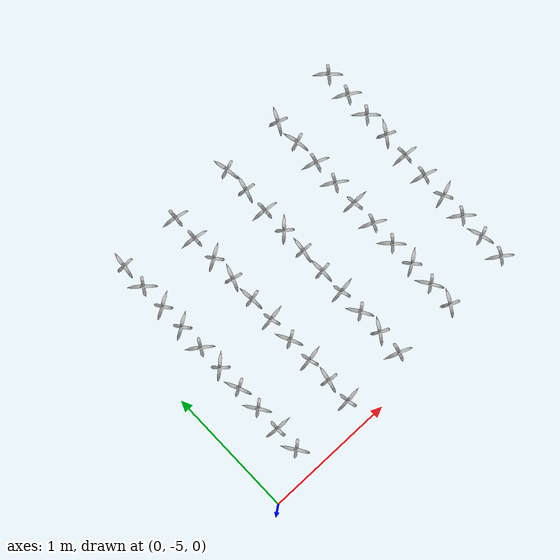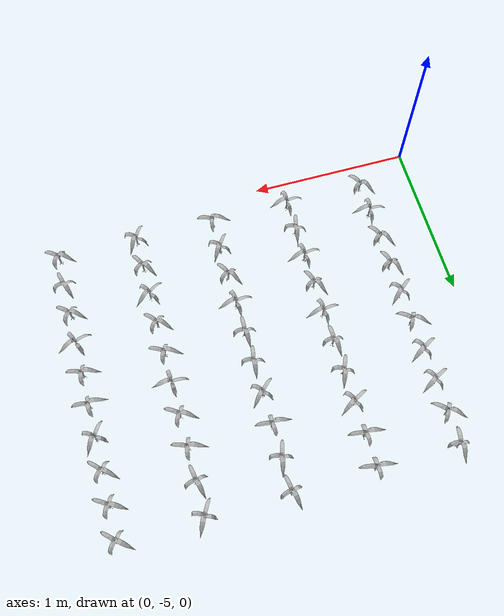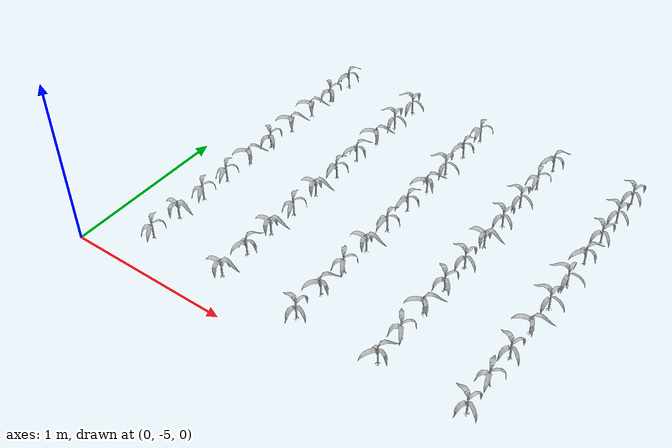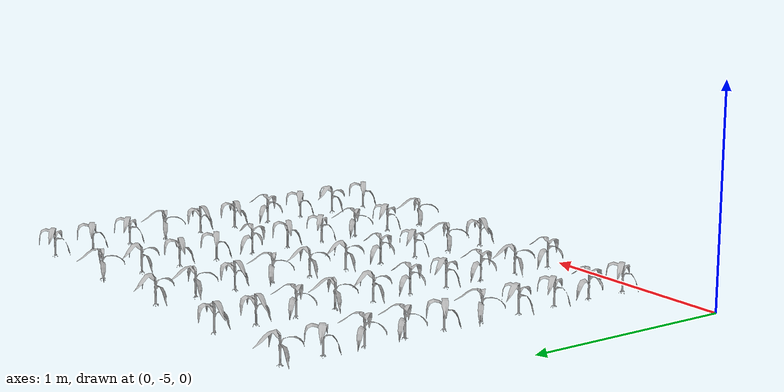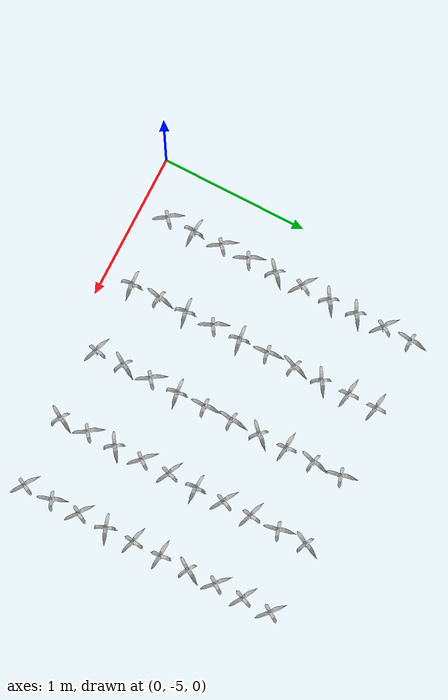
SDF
<sdf version="1.7">
 <world name="default">
  <model name="maize_0.36262630970692733_-4.8">
   <static>1</static>
   <link name="link">
    <inertial>
     <mass>0.2</mass>
     <inertia>
      <ixx>0.166667</ixx>
      <ixy>0</ixy>
      <ixz>0</ixz>
      <iyy>0.166667</iyy>
      <iyz>0</iyz>
      <izz>0.166667</izz>
     </inertia>
    </inertial>
    <collision name="collision">
     <geometry><mesh><uri>model://corn_3/meshes/corn.dae</uri><scale>0.25 0.25 0.25</scale></mesh></geometry>
     <surface>
      <friction><ode><mu>0</mu><mu2>0</mu2></ode></friction>
      <contact><ode><kp>0</kp><kd>0</kd><max_vel>0</max_vel><min_depth>0.002</min_depth></ode></contact>
     </surface>
    </collision>
    <visual name="visual">
     <geometry><mesh><uri>model://corn_3/meshes/corn.dae</uri><scale>0.25 0.25 0.25</scale></mesh></geometry>
    </visual>
    <velocity_decay><linear>0</linear><angular>0</angular></velocity_decay>
   </link>
   <pose>0.362626 -4.8 0.05 0 -0 2.21687</pose>
  </model>
  <model name="maize_0.36262630970692733_-4.6049999999999995">
   <static>1</static>
   <link name="link">
    <inertial>
     <mass>0.2</mass>
     <inertia>
      <ixx>0.166667</ixx>
      <ixy>0</ixy>
      <ixz>0</ixz>
      <iyy>0.166667</iyy>
      <iyz>0</iyz>
      <izz>0.166667</izz>
     </inertia>
    </inertial>
    <collision name="collision">
     <geometry><mesh><uri>model://corn_3/meshes/corn.dae</uri><scale>0.25 0.25 0.25</scale></mesh></geometry>
     <surface>
      <friction><ode><mu>0</mu><mu2>0</mu2></ode></friction>
      <contact><ode><kp>0</kp><kd>0</kd><max_vel>0</max_vel><min_depth>0.002</min_depth></ode></contact>
     </surface>
    </collision>
    <visual name="visual">
     <geometry><mesh><uri>model://corn_3/meshes/corn.dae</uri><scale>0.25 0.25 0.25</scale></mesh></geometry>
    </visual>
    <velocity_decay><linear>0</linear><angular>0</angular></velocity_decay>
   </link>
   <pose>0.362626 -4.605 0.05 0 -0 0.007822</pose>
  </model>
  <model name="maize_0.36262630970692733_-4.41">
   <static>1</static>
   <link name="link">
    <inertial>
     <mass>0.2</mass>
     <inertia>
      <ixx>0.166667</ixx>
      <ixy>0</ixy>
      <ixz>0</ixz>
      <iyy>0.166667</iyy>
      <iyz>0</iyz>
      <izz>0.166667</izz>
     </inertia>
    </inertial>
    <collision name="collision">
     <geometry><mesh><uri>model://corn_3/meshes/corn.dae</uri><scale>0.25 0.25 0.25</scale></mesh></geometry>
     <surface>
      <friction><ode><mu>0</mu><mu2>0</mu2></ode></friction>
      <contact><ode><kp>0</kp><kd>0</kd><max_vel>0</max_vel><min_depth>0.002</min_depth></ode></contact>
     </surface>
    </collision>
    <visual name="visual">
     <geometry><mesh><uri>model://corn_3/meshes/corn.dae</uri><scale>0.25 0.25 0.25</scale></mesh></geometry>
    </visual>
    <velocity_decay><linear>0</linear><angular>0</angular></velocity_decay>
   </link>
   <pose>0.362626 -4.41 0.05 0 -0 2.21503</pose>
  </model>
  <model name="maize_0.36262630970692733_-4.215">
   <static>1</static>
   <link name="link">
    <inertial>
     <mass>0.2</mass>
     <inertia>
      <ixx>0.166667</ixx>
      <ixy>0</ixy>
      <ixz>0</ixz>
      <iyy>0.166667</iyy>
      <iyz>0</iyz>
      <izz>0.166667</izz>
     </inertia>
    </inertial>
    <collision name="collision">
     <geometry><mesh><uri>model://corn_3/meshes/corn.dae</uri><scale>0.25 0.25 0.25</scale></mesh></geometry>
     <surface>
      <friction><ode><mu>0</mu><mu2>0</mu2></ode></friction>
      <contact><ode><kp>0</kp><kd>0</kd><max_vel>0</max_vel><min_depth>0.002</min_depth></ode></contact>
     </surface>
    </collision>
    <visual name="visual">
     <geometry><mesh><uri>model://corn_3/meshes/corn.dae</uri><scale>0.25 0.25 0.25</scale></mesh></geometry>
    </visual>
    <velocity_decay><linear>0</linear><angular>0</angular></velocity_decay>
   </link>
   <pose>0.362626 -4.215 0.05 0 -0 2.02805</pose>
  </model>
  <model name="maize_0.36262630970692733_-4.02">
   <static>1</static>
   <link name="link">
    <inertial>
     <mass>0.2</mass>
     <inertia>
      <ixx>0.166667</ixx>
      <ixy>0</ixy>
      <ixz>0</ixz>
      <iyy>0.166667</iyy>
      <iyz>0</iyz>
      <izz>0.166667</izz>
     </inertia>
    </inertial>
    <collision name="collision">
     <geometry><mesh><uri>model://corn_3/meshes/corn.dae</uri><scale>0.25 0.25 0.25</scale></mesh></geometry>
     <surface>
      <friction><ode><mu>0</mu><mu2>0</mu2></ode></friction>
      <contact><ode><kp>0</kp><kd>0</kd><max_vel>0</max_vel><min_depth>0.002</min_depth></ode></contact>
     </surface>
    </collision>
    <visual name="visual">
     <geometry><mesh><uri>model://corn_3/meshes/corn.dae</uri><scale>0.25 0.25 0.25</scale></mesh></geometry>
    </visual>
    <velocity_decay><linear>0</linear><angular>0</angular></velocity_decay>
   </link>
   <pose>0.362626 -4.02 0.05 0 -0 0.786789</pose>
  </model>
  <model name="maize_0.36262630970692733_-3.8249999999999997">
   <static>1</static>
   <link name="link">
    <inertial>
     <mass>0.2</mass>
     <inertia>
      <ixx>0.166667</ixx>
      <ixy>0</ixy>
      <ixz>0</ixz>
      <iyy>0.166667</iyy>
      <iyz>0</iyz>
      <izz>0.166667</izz>
     </inertia>
    </inertial>
    <collision name="collision">
     <geometry><mesh><uri>model://corn_3/meshes/corn.dae</uri><scale>0.25 0.25 0.25</scale></mesh></geometry>
     <surface>
      <friction><ode><mu>0</mu><mu2>0</mu2></ode></friction>
      <contact><ode><kp>0</kp><kd>0</kd><max_vel>0</max_vel><min_depth>0.002</min_depth></ode></contact>
     </surface>
    </collision>
    <visual name="visual">
     <geometry><mesh><uri>model://corn_3/meshes/corn.dae</uri><scale>0.25 0.25 0.25</scale></mesh></geometry>
    </visual>
    <velocity_decay><linear>0</linear><angular>0</angular></velocity_decay>
   </link>
   <pose>0.362626 -3.825 0.05 0 -0 2.58035</pose>
  </model>
  <model name="maize_0.36262630970692733_-3.63">
   <static>1</static>
   <link name="link">
    <inertial>
     <mass>0.2</mass>
     <inertia>
      <ixx>0.166667</ixx>
      <ixy>0</ixy>
      <ixz>0</ixz>
      <iyy>0.166667</iyy>
      <iyz>0</iyz>
      <izz>0.166667</izz>
     </inertia>
    </inertial>
    <collision name="collision">
     <geometry><mesh><uri>model://corn_3/meshes/corn.dae</uri><scale>0.25 0.25 0.25</scale></mesh></geometry>
     <surface>
      <friction><ode><mu>0</mu><mu2>0</mu2></ode></friction>
      <contact><ode><kp>0</kp><kd>0</kd><max_vel>0</max_vel><min_depth>0.002</min_depth></ode></contact>
     </surface>
    </collision>
    <visual name="visual">
     <geometry><mesh><uri>model://corn_3/meshes/corn.dae</uri><scale>0.25 0.25 0.25</scale></mesh></geometry>
    </visual>
    <velocity_decay><linear>0</linear><angular>0</angular></velocity_decay>
   </link>
   <pose>0.362626 -3.63 0.05 0 -0 0.615449</pose>
  </model>
  <model name="maize_0.36262630970692733_-3.4349999999999996">
   <static>1</static>
   <link name="link">
    <inertial>
     <mass>0.2</mass>
     <inertia>
      <ixx>0.166667</ixx>
      <ixy>0</ixy>
      <ixz>0</ixz>
      <iyy>0.166667</iyy>
      <iyz>0</iyz>
      <izz>0.166667</izz>
     </inertia>
    </inertial>
    <collision name="collision">
     <geometry><mesh><uri>model://corn_3/meshes/corn.dae</uri><scale>0.25 0.25 0.25</scale></mesh></geometry>
     <surface>
      <friction><ode><mu>0</mu><mu2>0</mu2></ode></friction>
      <contact><ode><kp>0</kp><kd>0</kd><max_vel>0</max_vel><min_depth>0.002</min_depth></ode></contact>
     </surface>
    </collision>
    <visual name="visual">
     <geometry><mesh><uri>model://corn_3/meshes/corn.dae</uri><scale>0.25 0.25 0.25</scale></mesh></geometry>
    </visual>
    <velocity_decay><linear>0</linear><angular>0</angular></velocity_decay>
   </link>
   <pose>0.362626 -3.435 0.05 0 -0 0.584906</pose>
  </model>
  <model name="maize_0.36262630970692733_-3.2399999999999998">
   <static>1</static>
   <link name="link">
    <inertial>
     <mass>0.2</mass>
     <inertia>
      <ixx>0.166667</ixx>
      <ixy>0</ixy>
      <ixz>0</ixz>
      <iyy>0.166667</iyy>
      <iyz>0</iyz>
      <izz>0.166667</izz>
     </inertia>
    </inertial>
    <collision name="collision">
     <geometry><mesh><uri>model://corn_3/meshes/corn.dae</uri><scale>0.25 0.25 0.25</scale></mesh></geometry>
     <surface>
      <friction><ode><mu>0</mu><mu2>0</mu2></ode></friction>
      <contact><ode><kp>0</kp><kd>0</kd><max_vel>0</max_vel><min_depth>0.002</min_depth></ode></contact>
     </surface>
    </collision>
    <visual name="visual">
     <geometry><mesh><uri>model://corn_3/meshes/corn.dae</uri><scale>0.25 0.25 0.25</scale></mesh></geometry>
    </visual>
    <velocity_decay><linear>0</linear><angular>0</angular></velocity_decay>
   </link>
   <pose>0.362626 -3.24 0.05 0 -0 2.50939</pose>
  </model>
  <model name="maize_0.36262630970692733_-3.045">
   <static>1</static>
   <link name="link">
    <inertial>
     <mass>0.2</mass>
     <inertia>
      <ixx>0.166667</ixx>
      <ixy>0</ixy>
      <ixz>0</ixz>
      <iyy>0.166667</iyy>
      <iyz>0</iyz>
      <izz>0.166667</izz>
     </inertia>
    </inertial>
    <collision name="collision">
     <geometry><mesh><uri>model://corn_3/meshes/corn.dae</uri><scale>0.25 0.25 0.25</scale></mesh></geometry>
     <surface>
      <friction><ode><mu>0</mu><mu2>0</mu2></ode></friction>
      <contact><ode><kp>0</kp><kd>0</kd><max_vel>0</max_vel><min_depth>0.002</min_depth></ode></contact>
     </surface>
    </collision>
    <visual name="visual">
     <geometry><mesh><uri>model://corn_3/meshes/corn.dae</uri><scale>0.25 0.25 0.25</scale></mesh></geometry>
    </visual>
    <velocity_decay><linear>0</linear><angular>0</angular></velocity_decay>
   </link>
   <pose>0.362626 -3.045 0.05 0 -0 1.50041</pose>
  </model>
  <model name="maize_0.8547947739721122_-4.8">
   <static>1</static>
   <link name="link">
    <inertial>
     <mass>0.2</mass>
     <inertia>
      <ixx>0.166667</ixx>
      <ixy>0</ixy>
      <ixz>0</ixz>
      <iyy>0.166667</iyy>
      <iyz>0</iyz>
      <izz>0.166667</izz>
     </inertia>
    </inertial>
    <collision name="collision">
     <geometry><mesh><uri>model://corn_3/meshes/corn.dae</uri><scale>0.25 0.25 0.25</scale></mesh></geometry>
     <surface>
      <friction><ode><mu>0</mu><mu2>0</mu2></ode></friction>
      <contact><ode><kp>0</kp><kd>0</kd><max_vel>0</max_vel><min_depth>0.002</min_depth></ode></contact>
     </surface>
    </collision>
    <visual name="visual">
     <geometry><mesh><uri>model://corn_3/meshes/corn.dae</uri><scale>0.25 0.25 0.25</scale></mesh></geometry>
    </visual>
    <velocity_decay><linear>0</linear><angular>0</angular></velocity_decay>
   </link>
   <pose>0.854795 -4.8 0.05 0 -0 0.153812</pose>
  </model>
  <model name="maize_0.8547947739721122_-4.6049999999999995">
   <static>1</static>
   <link name="link">
    <inertial>
     <mass>0.2</mass>
     <inertia>
      <ixx>0.166667</ixx>
      <ixy>0</ixy>
      <ixz>0</ixz>
      <iyy>0.166667</iyy>
      <iyz>0</iyz>
      <izz>0.166667</izz>
     </inertia>
    </inertial>
    <collision name="collision">
     <geometry><mesh><uri>model://corn_3/meshes/corn.dae</uri><scale>0.25 0.25 0.25</scale></mesh></geometry>
     <surface>
      <friction><ode><mu>0</mu><mu2>0</mu2></ode></friction>
      <contact><ode><kp>0</kp><kd>0</kd><max_vel>0</max_vel><min_depth>0.002</min_depth></ode></contact>
     </surface>
    </collision>
    <visual name="visual">
     <geometry><mesh><uri>model://corn_3/meshes/corn.dae</uri><scale>0.25 0.25 0.25</scale></mesh></geometry>
    </visual>
    <velocity_decay><linear>0</linear><angular>0</angular></velocity_decay>
   </link>
   <pose>0.854795 -4.605 0.05 0 -0 1.41923</pose>
  </model>
  <model name="maize_0.8547947739721122_-4.41">
   <static>1</static>
   <link name="link">
    <inertial>
     <mass>0.2</mass>
     <inertia>
      <ixx>0.166667</ixx>
      <ixy>0</ixy>
      <ixz>0</ixz>
      <iyy>0.166667</iyy>
      <iyz>0</iyz>
      <izz>0.166667</izz>
     </inertia>
    </inertial>
    <collision name="collision">
     <geometry><mesh><uri>model://corn_3/meshes/corn.dae</uri><scale>0.25 0.25 0.25</scale></mesh></geometry>
     <surface>
      <friction><ode><mu>0</mu><mu2>0</mu2></ode></friction>
      <contact><ode><kp>0</kp><kd>0</kd><max_vel>0</max_vel><min_depth>0.002</min_depth></ode></contact>
     </surface>
    </collision>
    <visual name="visual">
     <geometry><mesh><uri>model://corn_3/meshes/corn.dae</uri><scale>0.25 0.25 0.25</scale></mesh></geometry>
    </visual>
    <velocity_decay><linear>0</linear><angular>0</angular></velocity_decay>
   </link>
   <pose>0.854795 -4.41 0.05 0 -0 0.218819</pose>
  </model>
  <model name="maize_0.8547947739721122_-4.215">
   <static>1</static>
   <link name="link">
    <inertial>
     <mass>0.2</mass>
     <inertia>
      <ixx>0.166667</ixx>
      <ixy>0</ixy>
      <ixz>0</ixz>
      <iyy>0.166667</iyy>
      <iyz>0</iyz>
      <izz>0.166667</izz>
     </inertia>
    </inertial>
    <collision name="collision">
     <geometry><mesh><uri>model://corn_3/meshes/corn.dae</uri><scale>0.25 0.25 0.25</scale></mesh></geometry>
     <surface>
      <friction><ode><mu>0</mu><mu2>0</mu2></ode></friction>
      <contact><ode><kp>0</kp><kd>0</kd><max_vel>0</max_vel><min_depth>0.002</min_depth></ode></contact>
     </surface>
    </collision>
    <visual name="visual">
     <geometry><mesh><uri>model://corn_3/meshes/corn.dae</uri><scale>0.25 0.25 0.25</scale></mesh></geometry>
    </visual>
    <velocity_decay><linear>0</linear><angular>0</angular></velocity_decay>
   </link>
   <pose>0.854795 -4.215 0.05 0 -0 2.06832</pose>
  </model>
  <model name="maize_0.8547947739721122_-4.02">
   <static>1</static>
   <link name="link">
    <inertial>
     <mass>0.2</mass>
     <inertia>
      <ixx>0.166667</ixx>
      <ixy>0</ixy>
      <ixz>0</ixz>
      <iyy>0.166667</iyy>
      <iyz>0</iyz>
      <izz>0.166667</izz>
     </inertia>
    </inertial>
    <collision name="collision">
     <geometry><mesh><uri>model://corn_3/meshes/corn.dae</uri><scale>0.25 0.25 0.25</scale></mesh></geometry>
     <surface>
      <friction><ode><mu>0</mu><mu2>0</mu2></ode></friction>
      <contact><ode><kp>0</kp><kd>0</kd><max_vel>0</max_vel><min_depth>0.002</min_depth></ode></contact>
     </surface>
    </collision>
    <visual name="visual">
     <geometry><mesh><uri>model://corn_3/meshes/corn.dae</uri><scale>0.25 0.25 0.25</scale></mesh></geometry>
    </visual>
    <velocity_decay><linear>0</linear><angular>0</angular></velocity_decay>
   </link>
   <pose>0.854795 -4.02 0.05 0 -0 0.206517</pose>
  </model>
  <model name="maize_0.8547947739721122_-3.8249999999999997">
   <static>1</static>
   <link name="link">
    <inertial>
     <mass>0.2</mass>
     <inertia>
      <ixx>0.166667</ixx>
      <ixy>0</ixy>
      <ixz>0</ixz>
      <iyy>0.166667</iyy>
      <iyz>0</iyz>
      <izz>0.166667</izz>
     </inertia>
    </inertial>
    <collision name="collision">
     <geometry><mesh><uri>model://corn_3/meshes/corn.dae</uri><scale>0.25 0.25 0.25</scale></mesh></geometry>
     <surface>
      <friction><ode><mu>0</mu><mu2>0</mu2></ode></friction>
      <contact><ode><kp>0</kp><kd>0</kd><max_vel>0</max_vel><min_depth>0.002</min_depth></ode></contact>
     </surface>
    </collision>
    <visual name="visual">
     <geometry><mesh><uri>model://corn_3/meshes/corn.dae</uri><scale>0.25 0.25 0.25</scale></mesh></geometry>
    </visual>
    <velocity_decay><linear>0</linear><angular>0</angular></velocity_decay>
   </link>
   <pose>0.854795 -3.825 0.05 0 -0 1.70604</pose>
  </model>
  <model name="maize_0.8547947739721122_-3.63">
   <static>1</static>
   <link name="link">
    <inertial>
     <mass>0.2</mass>
     <inertia>
      <ixx>0.166667</ixx>
      <ixy>0</ixy>
      <ixz>0</ixz>
      <iyy>0.166667</iyy>
      <iyz>0</iyz>
      <izz>0.166667</izz>
     </inertia>
    </inertial>
    <collision name="collision">
     <geometry><mesh><uri>model://corn_3/meshes/corn.dae</uri><scale>0.25 0.25 0.25</scale></mesh></geometry>
     <surface>
      <friction><ode><mu>0</mu><mu2>0</mu2></ode></friction>
      <contact><ode><kp>0</kp><kd>0</kd><max_vel>0</max_vel><min_depth>0.002</min_depth></ode></contact>
     </surface>
    </collision>
    <visual name="visual">
     <geometry><mesh><uri>model://corn_3/meshes/corn.dae</uri><scale>0.25 0.25 0.25</scale></mesh></geometry>
    </visual>
    <velocity_decay><linear>0</linear><angular>0</angular></velocity_decay>
   </link>
   <pose>0.854795 -3.63 0.05 0 -0 1.27808</pose>
  </model>
  <model name="maize_0.8547947739721122_-3.4349999999999996">
   <static>1</static>
   <link name="link">
    <inertial>
     <mass>0.2</mass>
     <inertia>
      <ixx>0.166667</ixx>
      <ixy>0</ixy>
      <ixz>0</ixz>
      <iyy>0.166667</iyy>
      <iyz>0</iyz>
      <izz>0.166667</izz>
     </inertia>
    </inertial>
    <collision name="collision">
     <geometry><mesh><uri>model://corn_3/meshes/corn.dae</uri><scale>0.25 0.25 0.25</scale></mesh></geometry>
     <surface>
      <friction><ode><mu>0</mu><mu2>0</mu2></ode></friction>
      <contact><ode><kp>0</kp><kd>0</kd><max_vel>0</max_vel><min_depth>0.002</min_depth></ode></contact>
     </surface>
    </collision>
    <visual name="visual">
     <geometry><mesh><uri>model://corn_3/meshes/corn.dae</uri><scale>0.25 0.25 0.25</scale></mesh></geometry>
    </visual>
    <velocity_decay><linear>0</linear><angular>0</angular></velocity_decay>
   </link>
   <pose>0.854795 -3.435 0.05 0 -0 0.603614</pose>
  </model>
  <model name="maize_0.8547947739721122_-3.2399999999999998">
   <static>1</static>
   <link name="link">
    <inertial>
     <mass>0.2</mass>
     <inertia>
      <ixx>0.166667</ixx>
      <ixy>0</ixy>
      <ixz>0</ixz>
      <iyy>0.166667</iyy>
      <iyz>0</iyz>
      <izz>0.166667</izz>
     </inertia>
    </inertial>
    <collision name="collision">
     <geometry><mesh><uri>model://corn_3/meshes/corn.dae</uri><scale>0.25 0.25 0.25</scale></mesh></geometry>
     <surface>
      <friction><ode><mu>0</mu><mu2>0</mu2></ode></friction>
      <contact><ode><kp>0</kp><kd>0</kd><max_vel>0</max_vel><min_depth>0.002</min_depth></ode></contact>
     </surface>
    </collision>
    <visual name="visual">
     <geometry><mesh><uri>model://corn_3/meshes/corn.dae</uri><scale>0.25 0.25 0.25</scale></mesh></geometry>
    </visual>
    <velocity_decay><linear>0</linear><angular>0</angular></velocity_decay>
   </link>
   <pose>0.854795 -3.24 0.05 0 -0 3.06948</pose>
  </model>
  <model name="maize_0.8547947739721122_-3.045">
   <static>1</static>
   <link name="link">
    <inertial>
     <mass>0.2</mass>
     <inertia>
      <ixx>0.166667</ixx>
      <ixy>0</ixy>
      <ixz>0</ixz>
      <iyy>0.166667</iyy>
      <iyz>0</iyz>
      <izz>0.166667</izz>
     </inertia>
    </inertial>
    <collision name="collision">
     <geometry><mesh><uri>model://corn_3/meshes/corn.dae</uri><scale>0.25 0.25 0.25</scale></mesh></geometry>
     <surface>
      <friction><ode><mu>0</mu><mu2>0</mu2></ode></friction>
      <contact><ode><kp>0</kp><kd>0</kd><max_vel>0</max_vel><min_depth>0.002</min_depth></ode></contact>
     </surface>
    </collision>
    <visual name="visual">
     <geometry><mesh><uri>model://corn_3/meshes/corn.dae</uri><scale>0.25 0.25 0.25</scale></mesh></geometry>
    </visual>
    <velocity_decay><linear>0</linear><angular>0</angular></velocity_decay>
   </link>
   <pose>0.854795 -3.045 0.05 0 -0 3.03873</pose>
  </model>
  <model name="maize_1.346222194063599_-4.8">
   <static>1</static>
   <link name="link">
    <inertial>
     <mass>0.2</mass>
     <inertia>
      <ixx>0.166667</ixx>
      <ixy>0</ixy>
      <ixz>0</ixz>
      <iyy>0.166667</iyy>
      <iyz>0</iyz>
      <izz>0.166667</izz>
     </inertia>
    </inertial>
    <collision name="collision">
     <geometry><mesh><uri>model://corn_3/meshes/corn.dae</uri><scale>0.25 0.25 0.25</scale></mesh></geometry>
     <surface>
      <friction><ode><mu>0</mu><mu2>0</mu2></ode></friction>
      <contact><ode><kp>0</kp><kd>0</kd><max_vel>0</max_vel><min_depth>0.002</min_depth></ode></contact>
     </surface>
    </collision>
    <visual name="visual">
     <geometry><mesh><uri>model://corn_3/meshes/corn.dae</uri><scale>0.25 0.25 0.25</scale></mesh></geometry>
    </visual>
    <velocity_decay><linear>0</linear><angular>0</angular></velocity_decay>
   </link>
   <pose>1.34622 -4.8 0.05 0 -0 2.84531</pose>
  </model>
  <model name="maize_1.346222194063599_-4.6049999999999995">
   <static>1</static>
   <link name="link">
    <inertial>
     <mass>0.2</mass>
     <inertia>
      <ixx>0.166667</ixx>
      <ixy>0</ixy>
      <ixz>0</ixz>
      <iyy>0.166667</iyy>
      <iyz>0</iyz>
      <izz>0.166667</izz>
     </inertia>
    </inertial>
    <collision name="collision">
     <geometry><mesh><uri>model://corn_3/meshes/corn.dae</uri><scale>0.25 0.25 0.25</scale></mesh></geometry>
     <surface>
      <friction><ode><mu>0</mu><mu2>0</mu2></ode></friction>
      <contact><ode><kp>0</kp><kd>0</kd><max_vel>0</max_vel><min_depth>0.002</min_depth></ode></contact>
     </surface>
    </collision>
    <visual name="visual">
     <geometry><mesh><uri>model://corn_3/meshes/corn.dae</uri><scale>0.25 0.25 0.25</scale></mesh></geometry>
    </visual>
    <velocity_decay><linear>0</linear><angular>0</angular></velocity_decay>
   </link>
   <pose>1.34622 -4.605 0.05 0 -0 1.06755</pose>
  </model>
  <model name="maize_1.346222194063599_-4.41">
   <static>1</static>
   <link name="link">
    <inertial>
     <mass>0.2</mass>
     <inertia>
      <ixx>0.166667</ixx>
      <ixy>0</ixy>
      <ixz>0</ixz>
      <iyy>0.166667</iyy>
      <iyz>0</iyz>
      <izz>0.166667</izz>
     </inertia>
    </inertial>
    <collision name="collision">
     <geometry><mesh><uri>model://corn_3/meshes/corn.dae</uri><scale>0.25 0.25 0.25</scale></mesh></geometry>
     <surface>
      <friction><ode><mu>0</mu><mu2>0</mu2></ode></friction>
      <contact><ode><kp>0</kp><kd>0</kd><max_vel>0</max_vel><min_depth>0.002</min_depth></ode></contact>
     </surface>
    </collision>
    <visual name="visual">
     <geometry><mesh><uri>model://corn_3/meshes/corn.dae</uri><scale>0.25 0.25 0.25</scale></mesh></geometry>
    </visual>
    <velocity_decay><linear>0</linear><angular>0</angular></velocity_decay>
   </link>
   <pose>1.34622 -4.41 0.05 0 -0 2.19078</pose>
  </model>
  <model name="maize_1.346222194063599_-4.215">
   <static>1</static>
   <link name="link">
    <inertial>
     <mass>0.2</mass>
     <inertia>
      <ixx>0.166667</ixx>
      <ixy>0</ixy>
      <ixz>0</ixz>
      <iyy>0.166667</iyy>
      <iyz>0</iyz>
      <izz>0.166667</izz>
     </inertia>
    </inertial>
    <collision name="collision">
     <geometry><mesh><uri>model://corn_3/meshes/corn.dae</uri><scale>0.25 0.25 0.25</scale></mesh></geometry>
     <surface>
      <friction><ode><mu>0</mu><mu2>0</mu2></ode></friction>
      <contact><ode><kp>0</kp><kd>0</kd><max_vel>0</max_vel><min_depth>0.002</min_depth></ode></contact>
     </surface>
    </collision>
    <visual name="visual">
     <geometry><mesh><uri>model://corn_3/meshes/corn.dae</uri><scale>0.25 0.25 0.25</scale></mesh></geometry>
    </visual>
    <velocity_decay><linear>0</linear><angular>0</angular></velocity_decay>
   </link>
   <pose>1.34622 -4.215 0.05 0 -0 0.192373</pose>
  </model>
  <model name="maize_1.346222194063599_-4.02">
   <static>1</static>
   <link name="link">
    <inertial>
     <mass>0.2</mass>
     <inertia>
      <ixx>0.166667</ixx>
      <ixy>0</ixy>
      <ixz>0</ixz>
      <iyy>0.166667</iyy>
      <iyz>0</iyz>
      <izz>0.166667</izz>
     </inertia>
    </inertial>
    <collision name="collision">
     <geometry><mesh><uri>model://corn_3/meshes/corn.dae</uri><scale>0.25 0.25 0.25</scale></mesh></geometry>
     <surface>
      <friction><ode><mu>0</mu><mu2>0</mu2></ode></friction>
      <contact><ode><kp>0</kp><kd>0</kd><max_vel>0</max_vel><min_depth>0.002</min_depth></ode></contact>
     </surface>
    </collision>
    <visual name="visual">
     <geometry><mesh><uri>model://corn_3/meshes/corn.dae</uri><scale>0.25 0.25 0.25</scale></mesh></geometry>
    </visual>
    <velocity_decay><linear>0</linear><angular>0</angular></velocity_decay>
   </link>
   <pose>1.34622 -4.02 0.05 0 -0 1.64304</pose>
  </model>
  <model name="maize_1.346222194063599_-3.8249999999999997">
   <static>1</static>
   <link name="link">
    <inertial>
     <mass>0.2</mass>
     <inertia>
      <ixx>0.166667</ixx>
      <ixy>0</ixy>
      <ixz>0</ixz>
      <iyy>0.166667</iyy>
      <iyz>0</iyz>
      <izz>0.166667</izz>
     </inertia>
    </inertial>
    <collision name="collision">
     <geometry><mesh><uri>model://corn_3/meshes/corn.dae</uri><scale>0.25 0.25 0.25</scale></mesh></geometry>
     <surface>
      <friction><ode><mu>0</mu><mu2>0</mu2></ode></friction>
      <contact><ode><kp>0</kp><kd>0</kd><max_vel>0</max_vel><min_depth>0.002</min_depth></ode></contact>
     </surface>
    </collision>
    <visual name="visual">
     <geometry><mesh><uri>model://corn_3/meshes/corn.dae</uri><scale>0.25 0.25 0.25</scale></mesh></geometry>
    </visual>
    <velocity_decay><linear>0</linear><angular>0</angular></velocity_decay>
   </link>
   <pose>1.34622 -3.825 0.05 0 -0 1.49686</pose>
  </model>
  <model name="maize_1.346222194063599_-3.63">
   <static>1</static>
   <link name="link">
    <inertial>
     <mass>0.2</mass>
     <inertia>
      <ixx>0.166667</ixx>
      <ixy>0</ixy>
      <ixz>0</ixz>
      <iyy>0.166667</iyy>
      <iyz>0</iyz>
      <izz>0.166667</izz>
     </inertia>
    </inertial>
    <collision name="collision">
     <geometry><mesh><uri>model://corn_3/meshes/corn.dae</uri><scale>0.25 0.25 0.25</scale></mesh></geometry>
     <surface>
      <friction><ode><mu>0</mu><mu2>0</mu2></ode></friction>
      <contact><ode><kp>0</kp><kd>0</kd><max_vel>0</max_vel><min_depth>0.002</min_depth></ode></contact>
     </surface>
    </collision>
    <visual name="visual">
     <geometry><mesh><uri>model://corn_3/meshes/corn.dae</uri><scale>0.25 0.25 0.25</scale></mesh></geometry>
    </visual>
    <velocity_decay><linear>0</linear><angular>0</angular></velocity_decay>
   </link>
   <pose>1.34622 -3.63 0.05 0 -0 0.860552</pose>
  </model>
  <model name="maize_1.346222194063599_-3.4349999999999996">
   <static>1</static>
   <link name="link">
    <inertial>
     <mass>0.2</mass>
     <inertia>
      <ixx>0.166667</ixx>
      <ixy>0</ixy>
      <ixz>0</ixz>
      <iyy>0.166667</iyy>
      <iyz>0</iyz>
      <izz>0.166667</izz>
     </inertia>
    </inertial>
    <collision name="collision">
     <geometry><mesh><uri>model://corn_3/meshes/corn.dae</uri><scale>0.25 0.25 0.25</scale></mesh></geometry>
     <surface>
      <friction><ode><mu>0</mu><mu2>0</mu2></ode></friction>
      <contact><ode><kp>0</kp><kd>0</kd><max_vel>0</max_vel><min_depth>0.002</min_depth></ode></contact>
     </surface>
    </collision>
    <visual name="visual">
     <geometry><mesh><uri>model://corn_3/meshes/corn.dae</uri><scale>0.25 0.25 0.25</scale></mesh></geometry>
    </visual>
    <velocity_decay><linear>0</linear><angular>0</angular></velocity_decay>
   </link>
   <pose>1.34622 -3.435 0.05 0 -0 3.1043</pose>
  </model>
  <model name="maize_1.346222194063599_-3.2399999999999998">
   <static>1</static>
   <link name="link">
    <inertial>
     <mass>0.2</mass>
     <inertia>
      <ixx>0.166667</ixx>
      <ixy>0</ixy>
      <ixz>0</ixz>
      <iyy>0.166667</iyy>
      <iyz>0</iyz>
      <izz>0.166667</izz>
     </inertia>
    </inertial>
    <collision name="collision">
     <geometry><mesh><uri>model://corn_3/meshes/corn.dae</uri><scale>0.25 0.25 0.25</scale></mesh></geometry>
     <surface>
      <friction><ode><mu>0</mu><mu2>0</mu2></ode></friction>
      <contact><ode><kp>0</kp><kd>0</kd><max_vel>0</max_vel><min_depth>0.002</min_depth></ode></contact>
     </surface>
    </collision>
    <visual name="visual">
     <geometry><mesh><uri>model://corn_3/meshes/corn.dae</uri><scale>0.25 0.25 0.25</scale></mesh></geometry>
    </visual>
    <velocity_decay><linear>0</linear><angular>0</angular></velocity_decay>
   </link>
   <pose>1.34622 -3.24 0.05 0 -0 1.37635</pose>
  </model>
  <model name="maize_1.346222194063599_-3.045">
   <static>1</static>
   <link name="link">
    <inertial>
     <mass>0.2</mass>
     <inertia>
      <ixx>0.166667</ixx>
      <ixy>0</ixy>
      <ixz>0</ixz>
      <iyy>0.166667</iyy>
      <iyz>0</iyz>
      <izz>0.166667</izz>
     </inertia>
    </inertial>
    <collision name="collision">
     <geometry><mesh><uri>model://corn_3/meshes/corn.dae</uri><scale>0.25 0.25 0.25</scale></mesh></geometry>
     <surface>
      <friction><ode><mu>0</mu><mu2>0</mu2></ode></friction>
      <contact><ode><kp>0</kp><kd>0</kd><max_vel>0</max_vel><min_depth>0.002</min_depth></ode></contact>
     </surface>
    </collision>
    <visual name="visual">
     <geometry><mesh><uri>model://corn_3/meshes/corn.dae</uri><scale>0.25 0.25 0.25</scale></mesh></geometry>
    </visual>
    <velocity_decay><linear>0</linear><angular>0</angular></velocity_decay>
   </link>
   <pose>1.34622 -3.045 0.05 0 -0 1.81865</pose>
  </model>
  <model name="maize_1.8369094047028893_-4.8">
   <static>1</static>
   <link name="link">
    <inertial>
     <mass>0.2</mass>
     <inertia>
      <ixx>0.166667</ixx>
      <ixy>0</ixy>
      <ixz>0</ixz>
      <iyy>0.166667</iyy>
      <iyz>0</iyz>
      <izz>0.166667</izz>
     </inertia>
    </inertial>
    <collision name="collision">
     <geometry><mesh><uri>model://corn_3/meshes/corn.dae</uri><scale>0.25 0.25 0.25</scale></mesh></geometry>
     <surface>
      <friction><ode><mu>0</mu><mu2>0</mu2></ode></friction>
      <contact><ode><kp>0</kp><kd>0</kd><max_vel>0</max_vel><min_depth>0.002</min_depth></ode></contact>
     </surface>
    </collision>
    <visual name="visual">
     <geometry><mesh><uri>model://corn_3/meshes/corn.dae</uri><scale>0.25 0.25 0.25</scale></mesh></geometry>
    </visual>
    <velocity_decay><linear>0</linear><angular>0</angular></velocity_decay>
   </link>
   <pose>1.83691 -4.8 0.05 0 -0 1.1059</pose>
  </model>
  <model name="maize_1.8369094047028893_-4.6049999999999995">
   <static>1</static>
   <link name="link">
    <inertial>
     <mass>0.2</mass>
     <inertia>
      <ixx>0.166667</ixx>
      <ixy>0</ixy>
      <ixz>0</ixz>
      <iyy>0.166667</iyy>
      <iyz>0</iyz>
      <izz>0.166667</izz>
     </inertia>
    </inertial>
    <collision name="collision">
     <geometry><mesh><uri>model://corn_3/meshes/corn.dae</uri><scale>0.25 0.25 0.25</scale></mesh></geometry>
     <surface>
      <friction><ode><mu>0</mu><mu2>0</mu2></ode></friction>
      <contact><ode><kp>0</kp><kd>0</kd><max_vel>0</max_vel><min_depth>0.002</min_depth></ode></contact>
     </surface>
    </collision>
    <visual name="visual">
     <geometry><mesh><uri>model://corn_3/meshes/corn.dae</uri><scale>0.25 0.25 0.25</scale></mesh></geometry>
    </visual>
    <velocity_decay><linear>0</linear><angular>0</angular></velocity_decay>
   </link>
   <pose>1.83691 -4.605 0.05 0 -0 2.20358</pose>
  </model>
  <model name="maize_1.8369094047028893_-4.41">
   <static>1</static>
   <link name="link">
    <inertial>
     <mass>0.2</mass>
     <inertia>
      <ixx>0.166667</ixx>
      <ixy>0</ixy>
      <ixz>0</ixz>
      <iyy>0.166667</iyy>
      <iyz>0</iyz>
      <izz>0.166667</izz>
     </inertia>
    </inertial>
    <collision name="collision">
     <geometry><mesh><uri>model://corn_3/meshes/corn.dae</uri><scale>0.25 0.25 0.25</scale></mesh></geometry>
     <surface>
      <friction><ode><mu>0</mu><mu2>0</mu2></ode></friction>
      <contact><ode><kp>0</kp><kd>0</kd><max_vel>0</max_vel><min_depth>0.002</min_depth></ode></contact>
     </surface>
    </collision>
    <visual name="visual">
     <geometry><mesh><uri>model://corn_3/meshes/corn.dae</uri><scale>0.25 0.25 0.25</scale></mesh></geometry>
    </visual>
    <velocity_decay><linear>0</linear><angular>0</angular></velocity_decay>
   </link>
   <pose>1.83691 -4.41 0.05 0 -0 0.653971</pose>
  </model>
  <model name="maize_1.8369094047028893_-4.215">
   <static>1</static>
   <link name="link">
    <inertial>
     <mass>0.2</mass>
     <inertia>
      <ixx>0.166667</ixx>
      <ixy>0</ixy>
      <ixz>0</ixz>
      <iyy>0.166667</iyy>
      <iyz>0</iyz>
      <izz>0.166667</izz>
     </inertia>
    </inertial>
    <collision name="collision">
     <geometry><mesh><uri>model://corn_3/meshes/corn.dae</uri><scale>0.25 0.25 0.25</scale></mesh></geometry>
     <surface>
      <friction><ode><mu>0</mu><mu2>0</mu2></ode></friction>
      <contact><ode><kp>0</kp><kd>0</kd><max_vel>0</max_vel><min_depth>0.002</min_depth></ode></contact>
     </surface>
    </collision>
    <visual name="visual">
     <geometry><mesh><uri>model://corn_3/meshes/corn.dae</uri><scale>0.25 0.25 0.25</scale></mesh></geometry>
    </visual>
    <velocity_decay><linear>0</linear><angular>0</angular></velocity_decay>
   </link>
   <pose>1.83691 -4.215 0.05 0 -0 2.41821</pose>
  </model>
  <model name="maize_1.8369094047028893_-4.02">
   <static>1</static>
   <link name="link">
    <inertial>
     <mass>0.2</mass>
     <inertia>
      <ixx>0.166667</ixx>
      <ixy>0</ixy>
      <ixz>0</ixz>
      <iyy>0.166667</iyy>
      <iyz>0</iyz>
      <izz>0.166667</izz>
     </inertia>
    </inertial>
    <collision name="collision">
     <geometry><mesh><uri>model://corn_3/meshes/corn.dae</uri><scale>0.25 0.25 0.25</scale></mesh></geometry>
     <surface>
      <friction><ode><mu>0</mu><mu2>0</mu2></ode></friction>
      <contact><ode><kp>0</kp><kd>0</kd><max_vel>0</max_vel><min_depth>0.002</min_depth></ode></contact>
     </surface>
    </collision>
    <visual name="visual">
     <geometry><mesh><uri>model://corn_3/meshes/corn.dae</uri><scale>0.25 0.25 0.25</scale></mesh></geometry>
    </visual>
    <velocity_decay><linear>0</linear><angular>0</angular></velocity_decay>
   </link>
   <pose>1.83691 -4.02 0.05 0 -0 2.75158</pose>
  </model>
  <model name="maize_1.8369094047028893_-3.8249999999999997">
   <static>1</static>
   <link name="link">
    <inertial>
     <mass>0.2</mass>
     <inertia>
      <ixx>0.166667</ixx>
      <ixy>0</ixy>
      <ixz>0</ixz>
      <iyy>0.166667</iyy>
      <iyz>0</iyz>
      <izz>0.166667</izz>
     </inertia>
    </inertial>
    <collision name="collision">
     <geometry><mesh><uri>model://corn_3/meshes/corn.dae</uri><scale>0.25 0.25 0.25</scale></mesh></geometry>
     <surface>
      <friction><ode><mu>0</mu><mu2>0</mu2></ode></friction>
      <contact><ode><kp>0</kp><kd>0</kd><max_vel>0</max_vel><min_depth>0.002</min_depth></ode></contact>
     </surface>
    </collision>
    <visual name="visual">
     <geometry><mesh><uri>model://corn_3/meshes/corn.dae</uri><scale>0.25 0.25 0.25</scale></mesh></geometry>
    </visual>
    <velocity_decay><linear>0</linear><angular>0</angular></velocity_decay>
   </link>
   <pose>1.83691 -3.825 0.05 0 -0 0.055191</pose>
  </model>
  <model name="maize_1.8369094047028893_-3.63">
   <static>1</static>
   <link name="link">
    <inertial>
     <mass>0.2</mass>
     <inertia>
      <ixx>0.166667</ixx>
      <ixy>0</ixy>
      <ixz>0</ixz>
      <iyy>0.166667</iyy>
      <iyz>0</iyz>
      <izz>0.166667</izz>
     </inertia>
    </inertial>
    <collision name="collision">
     <geometry><mesh><uri>model://corn_3/meshes/corn.dae</uri><scale>0.25 0.25 0.25</scale></mesh></geometry>
     <surface>
      <friction><ode><mu>0</mu><mu2>0</mu2></ode></friction>
      <contact><ode><kp>0</kp><kd>0</kd><max_vel>0</max_vel><min_depth>0.002</min_depth></ode></contact>
     </surface>
    </collision>
    <visual name="visual">
     <geometry><mesh><uri>model://corn_3/meshes/corn.dae</uri><scale>0.25 0.25 0.25</scale></mesh></geometry>
    </visual>
    <velocity_decay><linear>0</linear><angular>0</angular></velocity_decay>
   </link>
   <pose>1.83691 -3.63 0.05 0 -0 2.65275</pose>
  </model>
  <model name="maize_1.8369094047028893_-3.4349999999999996">
   <static>1</static>
   <link name="link">
    <inertial>
     <mass>0.2</mass>
     <inertia>
      <ixx>0.166667</ixx>
      <ixy>0</ixy>
      <ixz>0</ixz>
      <iyy>0.166667</iyy>
      <iyz>0</iyz>
      <izz>0.166667</izz>
     </inertia>
    </inertial>
    <collision name="collision">
     <geometry><mesh><uri>model://corn_3/meshes/corn.dae</uri><scale>0.25 0.25 0.25</scale></mesh></geometry>
     <surface>
      <friction><ode><mu>0</mu><mu2>0</mu2></ode></friction>
      <contact><ode><kp>0</kp><kd>0</kd><max_vel>0</max_vel><min_depth>0.002</min_depth></ode></contact>
     </surface>
    </collision>
    <visual name="visual">
     <geometry><mesh><uri>model://corn_3/meshes/corn.dae</uri><scale>0.25 0.25 0.25</scale></mesh></geometry>
    </visual>
    <velocity_decay><linear>0</linear><angular>0</angular></velocity_decay>
   </link>
   <pose>1.83691 -3.435 0.05 0 -0 2.87492</pose>
  </model>
  <model name="maize_1.8369094047028893_-3.2399999999999998">
   <static>1</static>
   <link name="link">
    <inertial>
     <mass>0.2</mass>
     <inertia>
      <ixx>0.166667</ixx>
      <ixy>0</ixy>
      <ixz>0</ixz>
      <iyy>0.166667</iyy>
      <iyz>0</iyz>
      <izz>0.166667</izz>
     </inertia>
    </inertial>
    <collision name="collision">
     <geometry><mesh><uri>model://corn_3/meshes/corn.dae</uri><scale>0.25 0.25 0.25</scale></mesh></geometry>
     <surface>
      <friction><ode><mu>0</mu><mu2>0</mu2></ode></friction>
      <contact><ode><kp>0</kp><kd>0</kd><max_vel>0</max_vel><min_depth>0.002</min_depth></ode></contact>
     </surface>
    </collision>
    <visual name="visual">
     <geometry><mesh><uri>model://corn_3/meshes/corn.dae</uri><scale>0.25 0.25 0.25</scale></mesh></geometry>
    </visual>
    <velocity_decay><linear>0</linear><angular>0</angular></velocity_decay>
   </link>
   <pose>1.83691 -3.24 0.05 0 -0 1.84068</pose>
  </model>
  <model name="maize_1.8369094047028893_-3.045">
   <static>1</static>
   <link name="link">
    <inertial>
     <mass>0.2</mass>
     <inertia>
      <ixx>0.166667</ixx>
      <ixy>0</ixy>
      <ixz>0</ixz>
      <iyy>0.166667</iyy>
      <iyz>0</iyz>
      <izz>0.166667</izz>
     </inertia>
    </inertial>
    <collision name="collision">
     <geometry><mesh><uri>model://corn_3/meshes/corn.dae</uri><scale>0.25 0.25 0.25</scale></mesh></geometry>
     <surface>
      <friction><ode><mu>0</mu><mu2>0</mu2></ode></friction>
      <contact><ode><kp>0</kp><kd>0</kd><max_vel>0</max_vel><min_depth>0.002</min_depth></ode></contact>
     </surface>
    </collision>
    <visual name="visual">
     <geometry><mesh><uri>model://corn_3/meshes/corn.dae</uri><scale>0.25 0.25 0.25</scale></mesh></geometry>
    </visual>
    <velocity_decay><linear>0</linear><angular>0</angular></velocity_decay>
   </link>
   <pose>1.83691 -3.045 0.05 0 -0 1.15403</pose>
  </model>
  <model name="maize_2.3268572397762357_-4.8">
   <static>1</static>
   <link name="link">
    <inertial>
     <mass>0.2</mass>
     <inertia>
      <ixx>0.166667</ixx>
      <ixy>0</ixy>
      <ixz>0</ixz>
      <iyy>0.166667</iyy>
      <iyz>0</iyz>
      <izz>0.166667</izz>
     </inertia>
    </inertial>
    <collision name="collision">
     <geometry><mesh><uri>model://corn_3/meshes/corn.dae</uri><scale>0.25 0.25 0.25</scale></mesh></geometry>
     <surface>
      <friction><ode><mu>0</mu><mu2>0</mu2></ode></friction>
      <contact><ode><kp>0</kp><kd>0</kd><max_vel>0</max_vel><min_depth>0.002</min_depth></ode></contact>
     </surface>
    </collision>
    <visual name="visual">
     <geometry><mesh><uri>model://corn_3/meshes/corn.dae</uri><scale>0.25 0.25 0.25</scale></mesh></geometry>
    </visual>
    <velocity_decay><linear>0</linear><angular>0</angular></velocity_decay>
   </link>
   <pose>2.32686 -4.8 0.05 0 -0 2.61306</pose>
  </model>
  <model name="maize_2.3268572397762357_-4.6049999999999995">
   <static>1</static>
   <link name="link">
    <inertial>
     <mass>0.2</mass>
     <inertia>
      <ixx>0.166667</ixx>
      <ixy>0</ixy>
      <ixz>0</ixz>
      <iyy>0.166667</iyy>
      <iyz>0</iyz>
      <izz>0.166667</izz>
     </inertia>
    </inertial>
    <collision name="collision">
     <geometry><mesh><uri>model://corn_3/meshes/corn.dae</uri><scale>0.25 0.25 0.25</scale></mesh></geometry>
     <surface>
      <friction><ode><mu>0</mu><mu2>0</mu2></ode></friction>
      <contact><ode><kp>0</kp><kd>0</kd><max_vel>0</max_vel><min_depth>0.002</min_depth></ode></contact>
     </surface>
    </collision>
    <visual name="visual">
     <geometry><mesh><uri>model://corn_3/meshes/corn.dae</uri><scale>0.25 0.25 0.25</scale></mesh></geometry>
    </visual>
    <velocity_decay><linear>0</linear><angular>0</angular></velocity_decay>
   </link>
   <pose>2.32686 -4.605 0.05 0 -0 1.93859</pose>
  </model>
  <model name="maize_2.3268572397762357_-4.41">
   <static>1</static>
   <link name="link">
    <inertial>
     <mass>0.2</mass>
     <inertia>
      <ixx>0.166667</ixx>
      <ixy>0</ixy>
      <ixz>0</ixz>
      <iyy>0.166667</iyy>
      <iyz>0</iyz>
      <izz>0.166667</izz>
     </inertia>
    </inertial>
    <collision name="collision">
     <geometry><mesh><uri>model://corn_3/meshes/corn.dae</uri><scale>0.25 0.25 0.25</scale></mesh></geometry>
     <surface>
      <friction><ode><mu>0</mu><mu2>0</mu2></ode></friction>
      <contact><ode><kp>0</kp><kd>0</kd><max_vel>0</max_vel><min_depth>0.002</min_depth></ode></contact>
     </surface>
    </collision>
    <visual name="visual">
     <geometry><mesh><uri>model://corn_3/meshes/corn.dae</uri><scale>0.25 0.25 0.25</scale></mesh></geometry>
    </visual>
    <velocity_decay><linear>0</linear><angular>0</angular></velocity_decay>
   </link>
   <pose>2.32686 -4.41 0.05 0 -0 2.55207</pose>
  </model>
  <model name="maize_2.3268572397762357_-4.215">
   <static>1</static>
   <link name="link">
    <inertial>
     <mass>0.2</mass>
     <inertia>
      <ixx>0.166667</ixx>
      <ixy>0</ixy>
      <ixz>0</ixz>
      <iyy>0.166667</iyy>
      <iyz>0</iyz>
      <izz>0.166667</izz>
     </inertia>
    </inertial>
    <collision name="collision">
     <geometry><mesh><uri>model://corn_3/meshes/corn.dae</uri><scale>0.25 0.25 0.25</scale></mesh></geometry>
     <surface>
      <friction><ode><mu>0</mu><mu2>0</mu2></ode></friction>
      <contact><ode><kp>0</kp><kd>0</kd><max_vel>0</max_vel><min_depth>0.002</min_depth></ode></contact>
     </surface>
    </collision>
    <visual name="visual">
     <geometry><mesh><uri>model://corn_3/meshes/corn.dae</uri><scale>0.25 0.25 0.25</scale></mesh></geometry>
    </visual>
    <velocity_decay><linear>0</linear><angular>0</angular></velocity_decay>
   </link>
   <pose>2.32686 -4.215 0.05 0 -0 0.401292</pose>
  </model>
  <model name="maize_2.3268572397762357_-4.02">
   <static>1</static>
   <link name="link">
    <inertial>
     <mass>0.2</mass>
     <inertia>
      <ixx>0.166667</ixx>
      <ixy>0</ixy>
      <ixz>0</ixz>
      <iyy>0.166667</iyy>
      <iyz>0</iyz>
      <izz>0.166667</izz>
     </inertia>
    </inertial>
    <collision name="collision">
     <geometry><mesh><uri>model://corn_3/meshes/corn.dae</uri><scale>0.25 0.25 0.25</scale></mesh></geometry>
     <surface>
      <friction><ode><mu>0</mu><mu2>0</mu2></ode></friction>
      <contact><ode><kp>0</kp><kd>0</kd><max_vel>0</max_vel><min_depth>0.002</min_depth></ode></contact>
     </surface>
    </collision>
    <visual name="visual">
     <geometry><mesh><uri>model://corn_3/meshes/corn.dae</uri><scale>0.25 0.25 0.25</scale></mesh></geometry>
    </visual>
    <velocity_decay><linear>0</linear><angular>0</angular></velocity_decay>
   </link>
   <pose>2.32686 -4.02 0.05 0 -0 2.92848</pose>
  </model>
  <model name="maize_2.3268572397762357_-3.8249999999999997">
   <static>1</static>
   <link name="link">
    <inertial>
     <mass>0.2</mass>
     <inertia>
      <ixx>0.166667</ixx>
      <ixy>0</ixy>
      <ixz>0</ixz>
      <iyy>0.166667</iyy>
      <iyz>0</iyz>
      <izz>0.166667</izz>
     </inertia>
    </inertial>
    <collision name="collision">
     <geometry><mesh><uri>model://corn_3/meshes/corn.dae</uri><scale>0.25 0.25 0.25</scale></mesh></geometry>
     <surface>
      <friction><ode><mu>0</mu><mu2>0</mu2></ode></friction>
      <contact><ode><kp>0</kp><kd>0</kd><max_vel>0</max_vel><min_depth>0.002</min_depth></ode></contact>
     </surface>
    </collision>
    <visual name="visual">
     <geometry><mesh><uri>model://corn_3/meshes/corn.dae</uri><scale>0.25 0.25 0.25</scale></mesh></geometry>
    </visual>
    <velocity_decay><linear>0</linear><angular>0</angular></velocity_decay>
   </link>
   <pose>2.32686 -3.825 0.05 0 -0 3.13597</pose>
  </model>
  <model name="maize_2.3268572397762357_-3.63">
   <static>1</static>
   <link name="link">
    <inertial>
     <mass>0.2</mass>
     <inertia>
      <ixx>0.166667</ixx>
      <ixy>0</ixy>
      <ixz>0</ixz>
      <iyy>0.166667</iyy>
      <iyz>0</iyz>
      <izz>0.166667</izz>
     </inertia>
    </inertial>
    <collision name="collision">
     <geometry><mesh><uri>model://corn_3/meshes/corn.dae</uri><scale>0.25 0.25 0.25</scale></mesh></geometry>
     <surface>
      <friction><ode><mu>0</mu><mu2>0</mu2></ode></friction>
      <contact><ode><kp>0</kp><kd>0</kd><max_vel>0</max_vel><min_depth>0.002</min_depth></ode></contact>
     </surface>
    </collision>
    <visual name="visual">
     <geometry><mesh><uri>model://corn_3/meshes/corn.dae</uri><scale>0.25 0.25 0.25</scale></mesh></geometry>
    </visual>
    <velocity_decay><linear>0</linear><angular>0</angular></velocity_decay>
   </link>
   <pose>2.32686 -3.63 0.05 0 -0 1.06496</pose>
  </model>
  <model name="maize_2.3268572397762357_-3.4349999999999996">
   <static>1</static>
   <link name="link">
    <inertial>
     <mass>0.2</mass>
     <inertia>
      <ixx>0.166667</ixx>
      <ixy>0</ixy>
      <ixz>0</ixz>
      <iyy>0.166667</iyy>
      <iyz>0</iyz>
      <izz>0.166667</izz>
     </inertia>
    </inertial>
    <collision name="collision">
     <geometry><mesh><uri>model://corn_3/meshes/corn.dae</uri><scale>0.25 0.25 0.25</scale></mesh></geometry>
     <surface>
      <friction><ode><mu>0</mu><mu2>0</mu2></ode></friction>
      <contact><ode><kp>0</kp><kd>0</kd><max_vel>0</max_vel><min_depth>0.002</min_depth></ode></contact>
     </surface>
    </collision>
    <visual name="visual">
     <geometry><mesh><uri>model://corn_3/meshes/corn.dae</uri><scale>0.25 0.25 0.25</scale></mesh></geometry>
    </visual>
    <velocity_decay><linear>0</linear><angular>0</angular></velocity_decay>
   </link>
   <pose>2.32686 -3.435 0.05 0 -0 2.45924</pose>
  </model>
  <model name="maize_2.3268572397762357_-3.2399999999999998">
   <static>1</static>
   <link name="link">
    <inertial>
     <mass>0.2</mass>
     <inertia>
      <ixx>0.166667</ixx>
      <ixy>0</ixy>
      <ixz>0</ixz>
      <iyy>0.166667</iyy>
      <iyz>0</iyz>
      <izz>0.166667</izz>
     </inertia>
    </inertial>
    <collision name="collision">
     <geometry><mesh><uri>model://corn_3/meshes/corn.dae</uri><scale>0.25 0.25 0.25</scale></mesh></geometry>
     <surface>
      <friction><ode><mu>0</mu><mu2>0</mu2></ode></friction>
      <contact><ode><kp>0</kp><kd>0</kd><max_vel>0</max_vel><min_depth>0.002</min_depth></ode></contact>
     </surface>
    </collision>
    <visual name="visual">
     <geometry><mesh><uri>model://corn_3/meshes/corn.dae</uri><scale>0.25 0.25 0.25</scale></mesh></geometry>
    </visual>
    <velocity_decay><linear>0</linear><angular>0</angular></velocity_decay>
   </link>
   <pose>2.32686 -3.24 0.05 0 -0 2.66837</pose>
  </model>
  <model name="maize_2.3268572397762357_-3.045">
   <static>1</static>
   <link name="link">
    <inertial>
     <mass>0.2</mass>
     <inertia>
      <ixx>0.166667</ixx>
      <ixy>0</ixy>
      <ixz>0</ixz>
      <iyy>0.166667</iyy>
      <iyz>0</iyz>
      <izz>0.166667</izz>
     </inertia>
    </inertial>
    <collision name="collision">
     <geometry><mesh><uri>model://corn_3/meshes/corn.dae</uri><scale>0.25 0.25 0.25</scale></mesh></geometry>
     <surface>
      <friction><ode><mu>0</mu><mu2>0</mu2></ode></friction>
      <contact><ode><kp>0</kp><kd>0</kd><max_vel>0</max_vel><min_depth>0.002</min_depth></ode></contact>
     </surface>
    </collision>
    <visual name="visual">
     <geometry><mesh><uri>model://corn_3/meshes/corn.dae</uri><scale>0.25 0.25 0.25</scale></mesh></geometry>
    </visual>
    <velocity_decay><linear>0</linear><angular>0</angular></velocity_decay>
   </link>
   <pose>2.32686 -3.045 0.05 0 -0 2.48724</pose>
  </model>
 </world>
</sdf>
